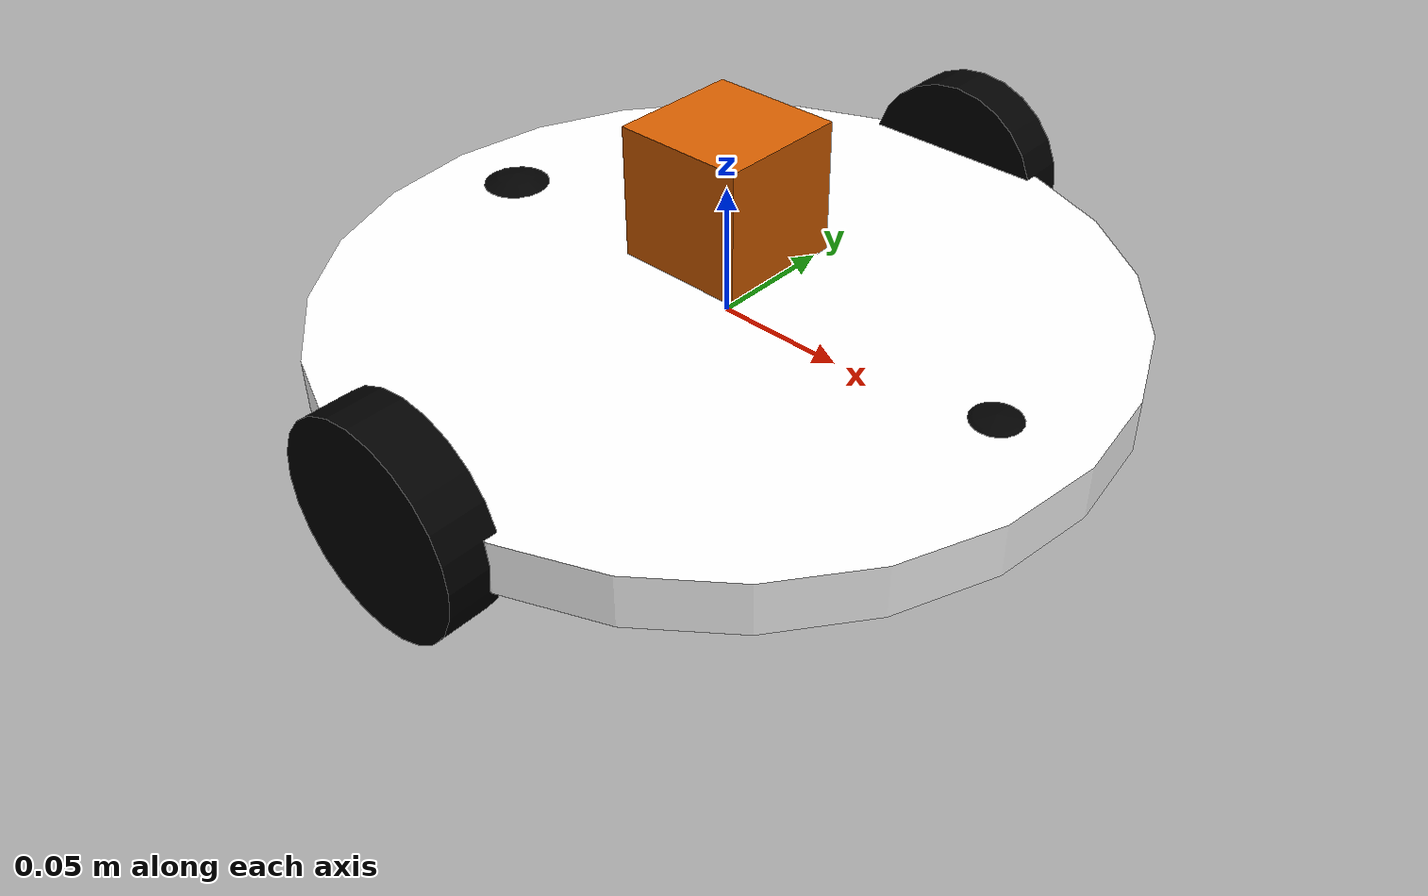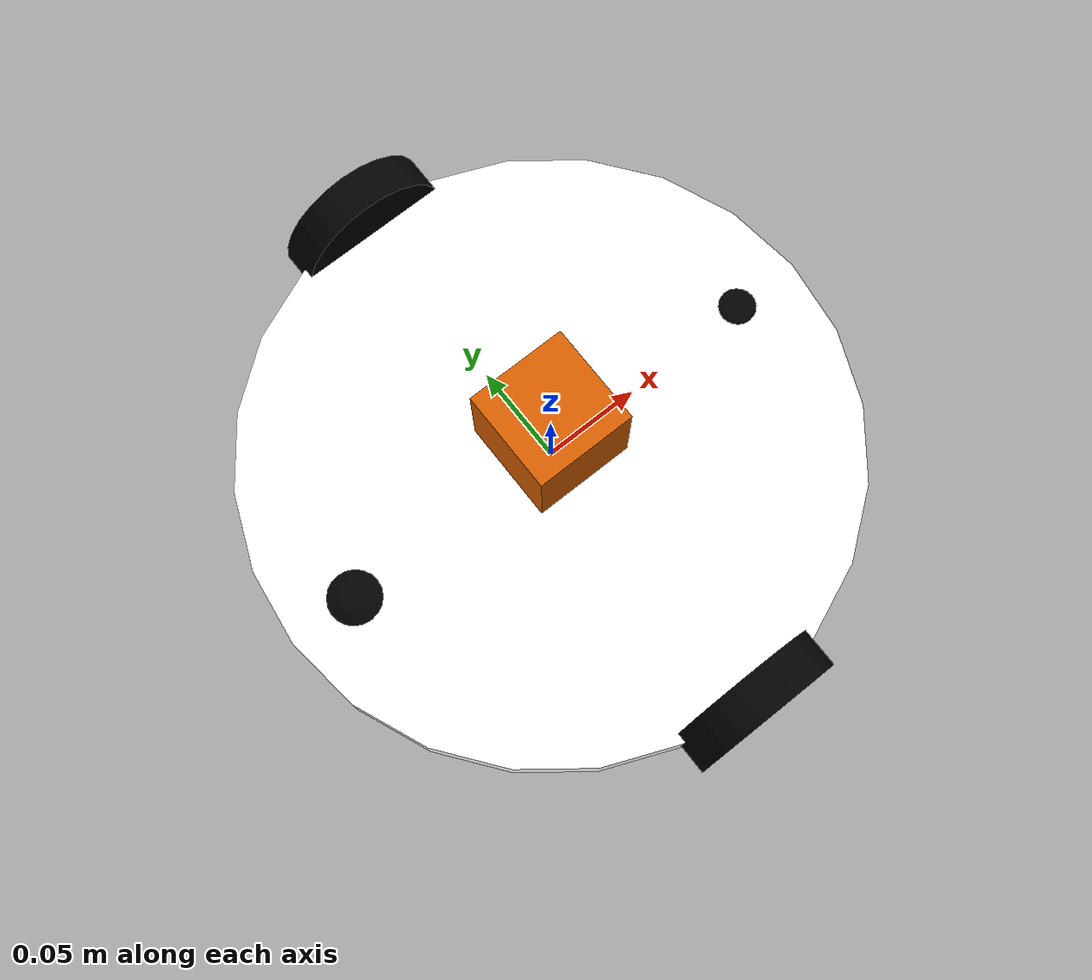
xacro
<?xml version="1.0"?>

<robot name="nav2_mobile_robot" xmlns:xacro="http://ros.org/wiki/xacro">
<xacro:include filename="$(find nav2_mobile_robot)/nav2_mobile_robot_macro.xacro" />

  <xacro:property name="base_radius" value="0.15" />
  <xacro:property name="passive_wheel_height" value="0.04" />
  <xacro:property name="passive_wheel_radius" value="0.025" />
  <xacro:property name="passive_wheel_mass" value="0.5" />
  <xacro:property name="wheel_radius" value="0.039" />
  <xacro:property name="wheel_height" value="0.02" />
  <xacro:property name="wheel_mass" value="2.5" />

	<link name="base_link">
		<inertial>
				<inertia ixx="1.0" ixy="0.0" ixz="0.0" iyy="1.0" iyz="0.0" izz="1.0"/>
			<mass value="5" />
			<origin xyz="0 0 0" />
			<cylinder_inertia  m="5" r="${base_radius}" h="0.02" />
		</inertial>
		<visual>
			<origin xyz="0 0 0" rpy="0 0 0" />
			<geometry>
				<cylinder length="0.02" radius="${base_radius}" />
			</geometry>
			<material name="White" />
		</visual>
		<collision>
			<origin xyz="0 0 0" rpy="0 0 0 " />
			<geometry>
				<cylinder length="0.02" radius="${base_radius}" />
			</geometry>
		</collision>
	</link>

	<xacro:passive_wheel_joint name="passive_wheel_front_joint"
		parent="base_link"
		child="passive_wheel_front_link">
		<origin xyz="0.115 0.0 0.007" rpy="${-M_PI/2} 0 0"/>
	</xacro:passive_wheel_joint>

	<xacro:passive_wheel_link name="passive_wheel_front_link">
			<origin xyz="0 0.02 0" rpy="${M_PI/2} 0 0" />
	</xacro:passive_wheel_link>

	<xacro:passive_wheel_joint
		name="passive_wheel_back_joint"
		parent="base_link"
		child="passive_wheel_back_link">
		<origin xyz="-0.135 0.0 0.009" rpy="${-M_PI/2} 0 0"/>
	</xacro:passive_wheel_joint>

	<xacro:passive_wheel_link
		name="passive_wheel_back_link">
			<origin xyz="0.02 0.02 0 " rpy="${M_PI/2} 0 0" />
	</xacro:passive_wheel_link>

	<xacro:wheel side="right" parent="base_link" translateX="0" translateY="-${base_radius}" />
	<xacro:wheel side="left" parent="base_link" translateX="0" translateY="${base_radius}" />

	<link name="lidar_link">
		 <visual>
      <origin xyz="0 0 0.0" rpy="0 0 0"/>
      <geometry>
			  <box size="0.05 0.05 0.05" />
      </geometry>
    </visual>

    <collision>
      <origin xyz="0 0 0.0" rpy="0 0 0"/>
      <geometry>
			<box size="0.05 0.05 0.05" />
      </geometry>
    </collision>

    <inertial>
      <origin xyz="0 0 0.0" rpy="0 0 0"/>
      <mass value="1"/>
      <inertia
        ixx="1.0" ixy="0.0" ixz="0.0"
        iyy="1.0" iyz="0.0"
        izz="1.0"/>
    </inertial>

	</link>

	  <joint name='lidar_sensor_joint' type='fixed'>
      <origin xyz="0 0 0.05" rpy="0 0 0"/>
      <parent link="base_link"/>

      <child link="lidar_link"/>

    </joint>

	  <gazebo reference="lidar_link">
        <sensor name="lidar" type='gpu_lidar'>
            <pose>0 0 0.0 0 0 0</pose>
            <topic>lidar</topic>
            <update_rate>10</update_rate>
            <ray>
                <scan>
                    <horizontal>
                        <samples>640</samples>
                        <resolution>1</resolution>
                        <min_angle>-1.396263</min_angle>
                        <max_angle>1.396263</max_angle>
                    </horizontal>
                    <vertical>
                        <samples>16</samples>
                        <resolution>1</resolution>
                        <min_angle>-0.261799</min_angle>
                        <max_angle>0.261799</max_angle>
                    </vertical>
                </scan>
                <range>
                    <min>0.1</min>
                    <max>10.0</max>
                    <resolution>0.01</resolution>
                </range>
            </ray>
            <always_on>1</always_on>
            <visualize>true</visualize>
			<gz_frame_id>lidar_link</gz_frame_id>
            <plugin filename="libignition-gazebo-sensors-system.so" name="ignition::gazebo::systems::Sensors">
				<render_engine>ogre2</render_engine>
			</plugin>
        </sensor>
    </gazebo>

  <gazebo>
    <plugin filename="libignition-gazebo-odometry-publisher-system" name="ignition::gazebo::systems::OdometryPublisher">
      <odom_publish_frequency>50</odom_publish_frequency>
      <odom_topic>/odom</odom_topic>
      <odom_frame>odom</odom_frame>
      <robot_base_frame>base_link</robot_base_frame>
      <tf_topic>/odom/tf</tf_topic>
    </plugin>
    </gazebo>

    <gazebo>
    <plugin
      filename="libignition-gazebo-diff-drive-system.so"
      name="ignition::gazebo::systems::DiffDrive">
      <left_joint>left_wheel_joint</left_joint>
      <right_joint>right_wheel_joint</right_joint>
      <wheel_separation>${2*base_radius}</wheel_separation>
      <wheel_radius>${wheel_radius}</wheel_radius>

      <odom_publish_frequency>10</odom_publish_frequency>
      <topic>cmd_vel</topic>
      <robotBaseFrame>base_link</robotBaseFrame>
    </plugin>

    <plugin filename="libignition-gazebo-joint-state-publisher-system.so"
        name="ignition::gazebo::systems::JointStatePublisher">
        <topic>joint_states</topic>
      </plugin>
  </gazebo>
</robot>

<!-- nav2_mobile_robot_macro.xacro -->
<robot name="nav2_mobile_robot" xmlns:xacro="http://www.ros.org/wiki/xacro">

    <xacro:property name="M_PI" value="3.1415926535897931" />
    <!--Material Definition-->
    <material name="Black">
      <color rgba="0.0 0.0 0.0 1.0"/>
    </material>
    <material name="White">
      <color rgba="1.0 1.0 1.0 1.0"/>
    </material>

    <xacro:macro name="cylinder_inertia" params="m r h">
        <inertia  ixx="${m*(3*r*r+h*h)/12}" ixy = "0" ixz = "0"
                iyy="${m*(3*r*r+h*h)/12}" iyz = "0"
                izz="${m*r*r/2}" />
    </xacro:macro>

    <xacro:macro name="passive_wheel_joint" params="name parent child *origin">
      <joint name="${name}" type="fixed" >
        <parent link="${parent}" />
        <child link="${child}" />
        <xacro:insert_block name="origin" />
      </joint>
    </xacro:macro>

    <xacro:macro name="passive_wheel_link" params="name *origin">
        <link name="${name}">
            <visual>
                <xacro:insert_block name="origin" />
                <geometry>
                    <sphere radius="${passive_wheel_radius}" />
                </geometry>
                <material name="Black" />
            </visual>
            <collision>
                <geometry>
                    <sphere radius="${passive_wheel_radius}" />
                </geometry>
                <origin xyz="0 0.02 0" rpy="${M_PI/2} 0 0" />
            </collision>
            <inertial>
                <mass value="${passive_wheel_mass}" />
                    <origin xyz="0 0 0" />
                    <inertia  ixx="0.001" ixy="0.0" ixz="0.0"
                            iyy="0.001" iyz="0.0"
                                izz="0.001" />
            </inertial>
        </link>
    </xacro:macro>

  <xacro:macro name="wheel" params="side parent translateX translateY">
    <link name="${side}_wheel">
      <visual>
        <origin xyz="0 0 0" rpy="${M_PI/2} 0  0 " />
        <geometry>
          <cylinder length="${wheel_height}" radius="${wheel_radius}" />
        </geometry>
              <material name="Black" />
      </visual>
      <collision>
        <origin xyz="0 0 0" rpy="${M_PI/2} 0 0 " />
        <geometry>
          <cylinder length="${wheel_height}" radius="${wheel_radius}" />
        </geometry>
      </collision>
      <inertial>
        <mass value="${wheel_mass}" />
        <origin xyz="0 0 0" />
				<inertia ixx="0.001" ixy="0.0" ixz="0.0"
               iyy="0.001" iyz="0.0"
               izz="0.001" />
      </inertial>
    </link>

    <joint name="${side}_wheel_joint" type="continuous">
      <parent link="${parent}"/>
      <child link="${side}_wheel"/>

        <origin xyz="0 ${translateY} 0" rpy="0 0 0" />
      <axis xyz="0 1 0" rpy="0 0 0" />
      <limit effort="100" velocity="100"/>
      <joint_properties damping="0.0" friction="0.0"/>
    </joint>

  </xacro:macro>
</robot>
